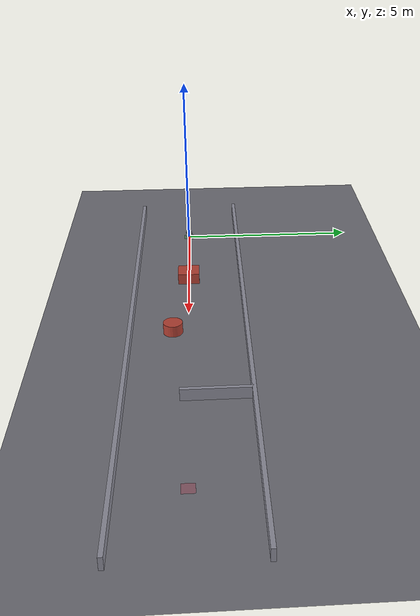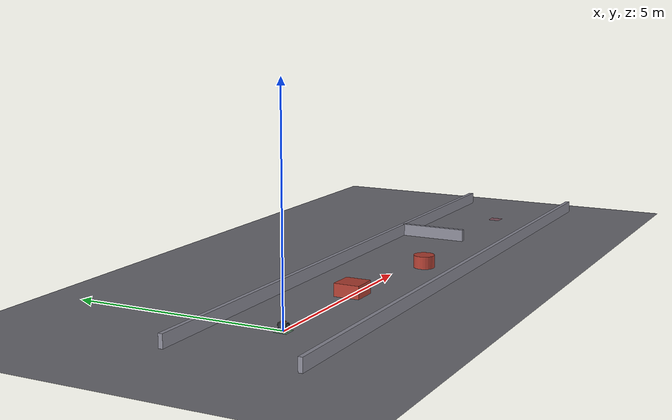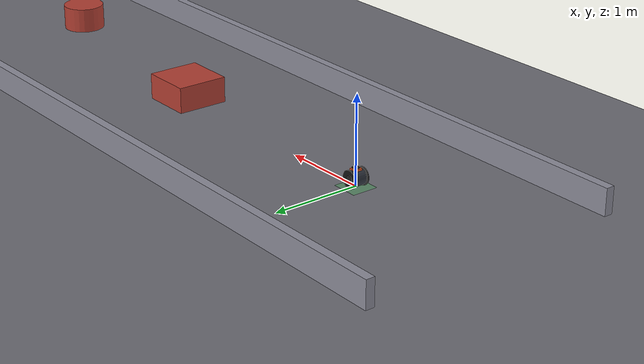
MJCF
<mujoco model="deskbot_nav_test">

  <include file="deskbot.xml"/>

  <option timestep="0.002" gravity="0 0 -9.81" integrator="implicitfast">
    <flag multiccd="enable"/>
  </option>

  <visual>
    <headlight diffuse="0.5 0.5 0.5" ambient="0.3 0.3 0.3"/>
    <global offwidth="1280" offheight="720"/>
  </visual>

  <statistic center="5.0 0 0.15" extent="8.0"/>

  <asset>
    <texture type="2d" name="grid_tex" builtin="checker" width="512" height="512"
             rgb1="0.45 0.45 0.48" rgb2="0.40 0.40 0.43"
             mark="edge" markrgb="0.35 0.35 0.38"/>
    <material name="ground" texture="grid_tex" texrepeat="30 12"
              specular="0.1" shininess="0.05"/>
    <material name="obstacle" rgba="0.70 0.25 0.20 1" specular="0.3" shininess="0.2"/>
    <material name="wall_obs" rgba="0.55 0.55 0.60 1" specular="0.2" shininess="0.1"/>
    <material name="start_zone" rgba="0.2 0.8 0.3 0.3" specular="0" shininess="0"/>
    <material name="finish_zone" rgba="0.8 0.2 0.3 0.3" specular="0" shininess="0"/>
  </asset>

  <worldbody>
    <light pos="5 -3 4" dir="0 0.3 -1" diffuse="0.7 0.7 0.7" castshadow="true"/>
    <light pos="5  3 4" dir="0 -0.3 -1" diffuse="0.5 0.5 0.5" castshadow="false"/>

    <!-- Ground plane -->
    <geom name="floor" type="plane" size="15 6 0.05" material="ground"
          contype="1" conaffinity="1"/>

    <!-- Start zone marker (visual only) -->
    <geom type="box" size="0.15 0.15 0.001" pos="0 0 0.002"
          material="start_zone" contype="0" conaffinity="0"/>

    <!-- Finish zone marker at X=12 (visual only) -->
    <geom type="box" size="0.15 0.15 0.001" pos="12 0 0.002"
          material="finish_zone" contype="0" conaffinity="0"/>

    <!-- Side walls to constrain lateral deviation (corridor 3m wide) -->
    <geom name="wall_north" type="box" size="8.0 0.05 0.15"
          pos="6.0 1.50 0.15" material="wall_obs"/>
    <geom name="wall_south" type="box" size="8.0 0.05 0.15"
          pos="6.0 -1.50 0.15" material="wall_obs"/>

    <geom name="obstacle_A" type="box" size="0.30 0.30 0.15"
          pos="3.0 0.0 0.15" material="obstacle"/>

    <geom name="obstacle_B" type="cylinder" size="0.25 0.15"
          pos="6.0 -0.40 0.15" material="obstacle"/>

    <geom name="obstacle_C" type="box" size="0.05 0.85 0.15"
          pos="9.0 0.65 0.15" material="wall_obs"/>

  </worldbody>
</mujoco>

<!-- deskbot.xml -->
<mujoco model="deskbot">

  <compiler angle="radian"/>

  <default>
    <joint damping="0.008" armature="0.001"/>
    <geom friction="1.2 0.005 0.001" condim="4" contype="1" conaffinity="1"
          solref="0.005 1.0"/>
    <motor ctrlrange="-3.0 3.0"/>

    <default class="wheel">
      <joint damping="0.003"/>
      <geom material="tire" mass="0.05"/>
    </default>
    <default class="hub">
      <geom material="wheel" contype="0" conaffinity="0" mass="0.005"/>
    </default>
    <default class="visual">
      <geom contype="0" conaffinity="0" mass="0.001"/>
    </default>
  </default>

  <asset>
    <material name="chassis" rgba="0.18 0.20 0.24 1" specular="0.6" shininess="0.4"/>
    <material name="body"    rgba="0.22 0.50 0.72 1" specular="0.5" shininess="0.3"/>
    <material name="accent"  rgba="0.90 0.35 0.15 1" specular="0.4" shininess="0.2"/>
    <material name="screen"  rgba="0.15 0.85 0.55 1" specular="0.8" shininess="0.9"
              emission="0.4"/>
    <material name="wheel"   rgba="0.12 0.12 0.12 1" specular="0.2" shininess="0.05"/>
    <material name="tire"    rgba="0.08 0.08 0.08 1" specular="0.05" shininess="0.01"/>
  </asset>

  <worldbody>
    <body name="chassis" pos="0 0 0.10">
      <joint type="free"/>

      <geom name="base" type="cylinder" size="0.09 0.065"
            pos="0 0 0" euler="1.5708 0 0"
            mass="0.05" material="chassis"/>

      <!-- Main body — cubic block, straddles axle -->
      <geom name="body" type="box" size="0.05 0.058 0.055"
            pos="0 0 0.015" mass="0.35" material="body"/>

      <!-- Head (battery + electronics → heavy) -->
      <geom name="head" type="box" size="0.04 0.048 0.016"
            pos="0 0 0.086" mass="0.18" material="accent"/>

      <!-- Sensor pod — small platform 1cm above head for VL53L0X modules.
           Clearance: sqrt(0² + 0.112²) = 11.2cm > R=10cm → 12mm margin.
           The pod sits just above the wheel tops. -->
      <geom name="sensor_pod" type="box" size="0.030 0.030 0.005"
            pos="0.005 0 0.107" mass="0.02" material="chassis"/>

      <!-- Front screen / LED indicator -->
      <geom name="screen" type="box" size="0.001 0.035 0.030"
            pos="0.051 0 0.015" material="screen" class="visual"/>

      <!-- Face indicator on head -->
      <geom name="face" type="box" size="0.001 0.020 0.010"
            pos="0.041 0 0.086" material="screen" class="visual"/>

      <!-- IMU sensor site (near CoM) -->
      <site name="imu" pos="0 0 0.0" size="0.003" rgba="1 0 0 0.5"/>

      <!-- Camera mount site (on head, forward-facing) -->
      <site name="cam_mount" pos="0.04 0 0.086" zaxis="1 0 0" size="0.005"
            rgba="0.2 0.2 0.2 1"/>

      <!-- FC: front center — LOW mount, horizontal -->
      <site name="rf_FC" pos="0.055 0 -0.04"
            zaxis="1 0 0"
            size="0.004" rgba="1 0.2 0.2 0.8"/>
      <!-- FL: front-left 30deg — LOW mount, near center, horizontal -->
      <site name="rf_FL" pos="0.055 0.015 -0.04"
            zaxis="0.866 0.5 0"
            size="0.004" rgba="1 0.2 0.2 0.8"/>
      <!-- FR: front-right 30deg — LOW mount, near center, horizontal -->
      <site name="rf_FR" pos="0.055 -0.015 -0.04"
            zaxis="0.866 -0.5 0"
            size="0.004" rgba="1 0.2 0.2 0.8"/>
      <site name="rf_FL2" pos="0.015 0.025 0.112"
            zaxis="0.5714 0.8161 -0.0872"
            size="0.004" rgba="1 0.6 0.2 0.8"/>
      <!-- FR2: front-right-wide 55deg — HIGH mount on pod, -5deg tilt -->
      <site name="rf_FR2" pos="0.015 -0.025 0.112"
            zaxis="0.5714 -0.8161 -0.0872"
            size="0.004" rgba="1 0.6 0.2 0.8"/>
      <!-- SL: side-left 90deg — HIGH mount on pod, -5deg tilt -->
      <site name="rf_SL" pos="0.0 0.025 0.112"
            zaxis="0 0.9962 -0.0872"
            size="0.004" rgba="1 0.2 0.2 0.8"/>
      <!-- SR: side-right 90deg — HIGH mount on pod, -5deg tilt -->
      <site name="rf_SR" pos="0.0 -0.025 0.112"
            zaxis="0 -0.9962 -0.0872"
            size="0.004" rgba="1 0.2 0.2 0.8"/>

      <!-- Left wheel (R=10cm, tight to body: 13mm gap) -->
      <body name="wheel_L" pos="0 0.08 0">
        <joint name="wheel_L" type="hinge" axis="0 1 0" class="wheel"/>
        <geom name="tire_L" type="cylinder" size="0.10 0.009"
              euler="1.5708 0 0" class="wheel"/>
        <geom name="hub_L" type="cylinder" size="0.045 0.01"
              euler="1.5708 0 0" class="hub"/>
      </body>

      <!-- Right wheel (R=10cm, tight to body: 13mm gap) -->
      <body name="wheel_R" pos="0 -0.08 0">
        <joint name="wheel_R" type="hinge" axis="0 1 0" class="wheel"/>
        <geom name="tire_R" type="cylinder" size="0.10 0.009"
              euler="1.5708 0 0" class="wheel"/>
        <geom name="hub_R" type="cylinder" size="0.045 0.01"
              euler="1.5708 0 0" class="hub"/>
      </body>

      <!-- Robot-attached cameras -->
      <camera name="follow" mode="track" pos="0.8 -0.5 0.4"
              xyaxes="0.6 1 0 -0.2 0 1"/>
      <camera name="onboard" mode="fixed" pos="0.06 0 0.10"
              xyaxes="0 -1 0 0 0 1"/>
    </body>
  </worldbody>

  <actuator>
    <motor joint="wheel_L" name="motor_L" gear="1"/>
    <motor joint="wheel_R" name="motor_R" gear="1"/>
  </actuator>

  <sensor>
    <!-- IMU (MPU6050-like): accelerometer + gyroscope -->
    <accelerometer name="accel" site="imu"/>
    <gyro          name="gyro"  site="imu"/>
    <!-- Wheel encoders: angular velocity -->
    <jointvel name="enc_L" joint="wheel_L"/>
    <jointvel name="enc_R" joint="wheel_R"/>
  </sensor>
</mujoco>
